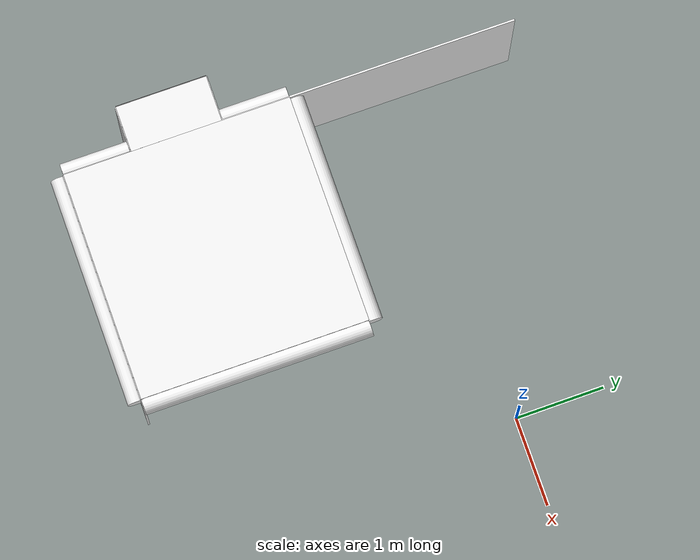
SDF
<sdf version="1.6">
 <world name="default">
  <model name="wall_right_-1_0_0_1">
   <static>1</static>
   <pose>-3.75 0.0 1.0 0.0 0.0 4.71</pose>
   <link name="link">
    <collision name="collision"><geometry><box><size>2.5 0.02 2.0</size></box></geometry></collision>
    <visual name="visual">
     <material>
      <script><name>Gazebo/White</name><uri>file://media/materials/scripts/gazebo.material</uri></script>
     </material>
     <geometry><box><size>2.5 0.02 2.0</size></box></geometry>
    </visual>
   </link>
  </model>
  <model name="wall_front_-1_-1_0_3">
   <static>1</static>
   <pose>-2.5 -3.75 1.0 0.0 0.0 3.14</pose>
   <link name="link">
    <collision name="collision"><geometry><box><size>2.5 0.02 2.0</size></box></geometry></collision>
    <visual name="visual">
     <material>
      <script><name>Gazebo/White</name><uri>file://media/materials/scripts/gazebo.material</uri></script>
     </material>
     <geometry><box><size>2.5 0.02 2.0</size></box></geometry>
    </visual>
   </link>
  </model>
  <model name="wall_top_-1_-1_0_3">
   <static>1</static>
   <pose>-2.5 -2.5 2.0 1.57 0.0 3.14</pose>
   <link name="link">
    <collision name="collision"><geometry><box><size>2.5 0.02 2.5</size></box></geometry></collision>
    <visual name="visual">
     <material>
      <script><name>Gazebo/White</name><uri>file://media/materials/scripts/gazebo.material</uri></script>
     </material>
     <geometry><box><size>2.5 0.02 2.5</size></box></geometry>
    </visual>
   </link>
  </model>
  <model name="white_pipe_left_-1_-1_0_3">
   <static>1</static>
   <pose>-2.5 -2.5 1.84 0.0 0.0 3.14</pose>
   <link name="link_0">
    <visual name="visual">
     <pose>-1.3 0 0 1.57 0 0</pose>
     <geometry><cylinder><radius>0.1</radius><length>2.5</length></cylinder></geometry>
     <material>
      <script><uri>file://media/materials/scripts/gazebo.material</uri><name>Gazebo/White</name></script>
     </material>
    </visual>
    <collision name="collision">
     <pose>-1.3 0 0 1.57 0 0</pose>
     <geometry><cylinder><radius>0.1</radius><length>2.5</length></cylinder></geometry>
    </collision>
   </link>
  </model>
  <model name="white_pipe_right_-1_-1_0_3">
   <static>1</static>
   <pose>-2.5 -2.5 1.84 0.0 0.0 3.14</pose>
   <link name="link_0">
    <visual name="visual">
     <pose>1.3 0 0 1.57 0 0</pose>
     <geometry><cylinder><radius>0.1</radius><length>2.5</length></cylinder></geometry>
     <material>
      <script><uri>file://media/materials/scripts/gazebo.material</uri><name>Gazebo/White</name></script>
     </material>
    </visual>
    <collision name="collision">
     <pose>1.3 0 0 1.57 0 0</pose>
     <geometry><cylinder><radius>0.1</radius><length>2.5</length></cylinder></geometry>
    </collision>
   </link>
  </model>
  <model name="black_pipe_right_-1_-1_0_3">
   <static>1</static>
   <pose>-2.5 -2.5 1.84 0.0 0.0 3.14</pose>
   <link name="link_0">
    <visual name="visual">
     <pose>1.3 0 -0.25 1.57 0 0</pose>
     <geometry><cylinder><radius>0.1</radius><length>2.5</length></cylinder></geometry>
     <material>
      <script><uri>file://media/materials/scripts/gazebo.material</uri><name>Gazebo/Black</name></script>
     </material>
    </visual>
    <collision name="collision">
     <pose>1.3 0 -0.25 1.57 0 0</pose>
     <geometry><cylinder><radius>0.1</radius><length>2.5</length></cylinder></geometry>
    </collision>
   </link>
  </model>
  <model name="grey_pipe_right_-1_-1_0_3">
   <static>1</static>
   <pose>-2.5 -2.5 1.84 0.0 0.0 3.14</pose>
   <link name="link_0">
    <visual name="visual">
     <pose>0.7 0 0 1.57 0 0</pose>
     <geometry><cylinder><radius>0.02</radius><length>2.5</length></cylinder></geometry>
     <material>
      <script><uri>file://media/materials/scripts/gazebo.material</uri><name>Gazebo/Grey</name></script>
     </material>
    </visual>
    <collision name="collision">
     <pose>0.7 0 0 1.57 0 0</pose>
     <geometry><cylinder><radius>0.02</radius><length>2.5</length></cylinder></geometry>
    </collision>
   </link>
  </model>
  <model name="red_pipe_right_-1_-1_0_3">
   <static>1</static>
   <pose>-2.5 -2.5 1.84 0.0 0.0 3.14</pose>
   <link name="link_0">
    <visual name="visual">
     <pose>0.85 0 0 1.57 0 0</pose>
     <geometry><cylinder><radius>0.02</radius><length>2.5</length></cylinder></geometry>
     <material>
      <script><uri>file://media/materials/scripts/gazebo.material</uri><name>Gazebo/Red</name></script>
     </material>
    </visual>
    <collision name="collision">
     <pose>0.85 0 0 1.57 0 0</pose>
     <geometry><cylinder><radius>0.02</radius><length>2.5</length></cylinder></geometry>
    </collision>
   </link>
  </model>
  <model name="blue_pipe_right_-1_-1_0_3">
   <static>1</static>
   <pose>-2.5 -2.5 1.84 0.0 0.0 3.14</pose>
   <link name="link_0">
    <visual name="visual">
     <pose>1 0 0 1.57 0 0</pose>
     <geometry><cylinder><radius>0.02</radius><length>2.5</length></cylinder></geometry>
     <material>
      <script><uri>file://media/materials/scripts/gazebo.material</uri><name>Gazebo/Blue</name></script>
     </material>
    </visual>
    <collision name="collision">
     <pose>1 0 0 1.57 0 0</pose>
     <geometry><cylinder><radius>0.02</radius><length>2.5</length></cylinder></geometry>
    </collision>
   </link>
  </model>
  <model name="white_pipe_left_1_-1_-1_0_3">
   <static>1</static>
   <pose>-2.5 -2.5 1.84 0.0 0.0 4.71</pose>
   <link name="link_0">
    <visual name="visual">
     <pose>-1.3 0 0 1.57 0 0</pose>
     <geometry><cylinder><radius>0.1</radius><length>2.5</length></cylinder></geometry>
     <material>
      <script><uri>file://media/materials/scripts/gazebo.material</uri><name>Gazebo/White</name></script>
     </material>
    </visual>
    <collision name="collision">
     <pose>-1.3 0 0 1.57 0 0</pose>
     <geometry><cylinder><radius>0.1</radius><length>2.5</length></cylinder></geometry>
    </collision>
   </link>
  </model>
  <model name="white_pipe_right_1_-1_-1_0_3">
   <static>1</static>
   <pose>-2.5 -2.5 1.84 0.0 0.0 4.71</pose>
   <link name="link_0">
    <visual name="visual">
     <pose>1.3 0 0 1.57 0 0</pose>
     <geometry><cylinder><radius>0.1</radius><length>2.5</length></cylinder></geometry>
     <material>
      <script><uri>file://media/materials/scripts/gazebo.material</uri><name>Gazebo/White</name></script>
     </material>
    </visual>
    <collision name="collision">
     <pose>1.3 0 0 1.57 0 0</pose>
     <geometry><cylinder><radius>0.1</radius><length>2.5</length></cylinder></geometry>
    </collision>
   </link>
  </model>
  <model name="panel_-1_-1_0_3">
   <static>1</static>
   <pose>-2.5 -3.75 1.3 0.0 0.0 4.71</pose>
   <link name="link">
    <collision name="collision"><geometry><box><size>0.04 0.7 1</size></box></geometry></collision>
    <visual name="visual">
     <material>
      <script><name>Gazebo/Blue</name><uri>file://media/materials/scripts/gazebo.material</uri></script>
     </material>
     <geometry><box><size>0.04 0.7 1</size></box></geometry>
    </visual>
   </link>
  </model>
  <model name="wall_right_front_left_-1_-1_0_3">
   <static>1</static>
   <pose>-3.75 -3.375 1.0 0.0 0.0 4.71</pose>
   <link name="link">
    <collision name="collision"><geometry><box><size>0.75 0.02 2.0</size></box></geometry></collision>
    <visual name="visual">
     <material>
      <script><name>Gazebo/White</name><uri>file://media/materials/scripts/gazebo.material</uri></script>
     </material>
     <geometry><box><size>0.75 0.02 2.0</size></box></geometry>
    </visual>
   </link>
  </model>
  <model name="wall_right_front_right_-1_-1_0_3">
   <static>1</static>
   <pose>-3.75 -1.625 1.0 0.0 0.0 4.71</pose>
   <link name="link">
    <collision name="collision"><geometry><box><size>0.75 0.02 2.0</size></box></geometry></collision>
    <visual name="visual">
     <material>
      <script><name>Gazebo/White</name><uri>file://media/materials/scripts/gazebo.material</uri></script>
     </material>
     <geometry><box><size>0.75 0.02 2.0</size></box></geometry>
    </visual>
   </link>
  </model>
  <model name="wall_right_front_up_-1_-1_0_3">
   <static>1</static>
   <pose>-3.75 -2.5 2.0 0.0 0.0 4.71</pose>
   <link name="link">
    <collision name="collision"><geometry><box><size>1.0 0.02 0.001</size></box></geometry></collision>
    <visual name="visual">
     <material>
      <script><name>Gazebo/White</name><uri>file://media/materials/scripts/gazebo.material</uri></script>
     </material>
     <geometry><box><size>1.0 0.02 0.001</size></box></geometry>
    </visual>
   </link>
  </model>
  <model name="wall_right_inside_back_-1_-1_0_3">
   <static>1</static>
   <pose>-4.25 -2.5 1.0 0.0 0.0 4.71</pose>
   <link name="link">
    <collision name="collision"><geometry><box><size>1 0.02 2</size></box></geometry></collision>
    <visual name="visual">
     <material>
      <script><name>Gazebo/DarkGrey</name><uri>file://media/materials/scripts/gazebo.material</uri></script>
     </material>
     <geometry><box><size>1 0.02 2</size></box></geometry>
    </visual>
   </link>
  </model>
  <model name="wall_right_inside_left_-1_-1_0_3">
   <static>1</static>
   <pose>-4.0 -3.0 1.0 0.0 0.0 3.14</pose>
   <link name="link">
    <collision name="collision"><geometry><box><size>0.5 0.02 2</size></box></geometry></collision>
    <visual name="visual">
     <material>
      <script><name>Gazebo/White</name><uri>file://media/materials/scripts/gazebo.material</uri></script>
     </material>
     <geometry><box><size>0.5 0.02 2</size></box></geometry>
    </visual>
   </link>
  </model>
  <model name="wall_right_inside_right_-1_-1_0_3">
   <static>1</static>
   <pose>-4.0 -2.0 1.0 0.0 0.0 3.14</pose>
   <link name="link">
    <collision name="collision"><geometry><box><size>0.5 0.02 2</size></box></geometry></collision>
    <visual name="visual">
     <material>
      <script><name>Gazebo/White</name><uri>file://media/materials/scripts/gazebo.material</uri></script>
     </material>
     <geometry><box><size>0.5 0.02 2</size></box></geometry>
    </visual>
   </link>
  </model>
  <model name="wall_right_inside_top_-1_-1_0_3">
   <static>1</static>
   <pose>-4.0 -2.5 2.0 1.57 0.0 4.71</pose>
   <link name="link">
    <collision name="collision"><geometry><box><size>1 0.02 0.5</size></box></geometry></collision>
    <visual name="visual">
     <material>
      <script><name>Gazebo/White</name><uri>file://media/materials/scripts/gazebo.material</uri></script>
     </material>
     <geometry><box><size>1 0.02 0.5</size></box></geometry>
    </visual>
   </link>
  </model>
 </world>
</sdf>
